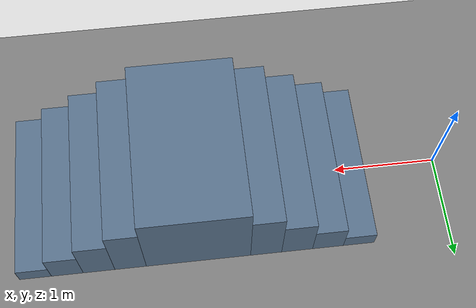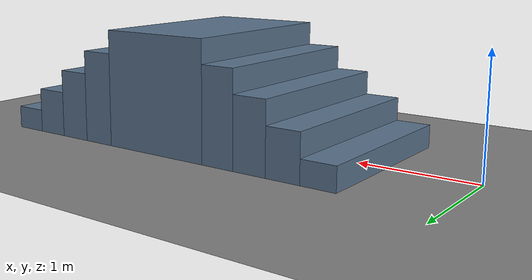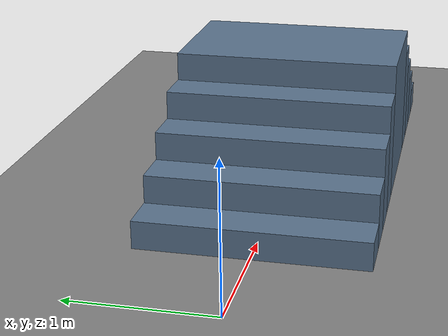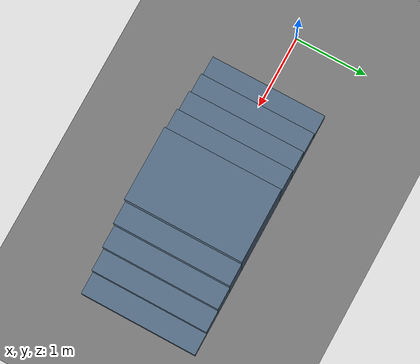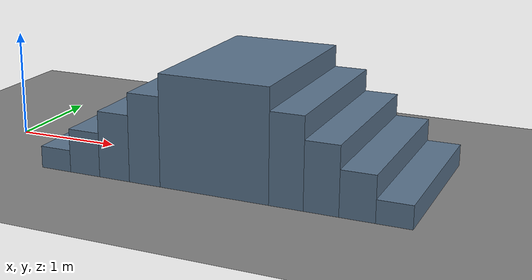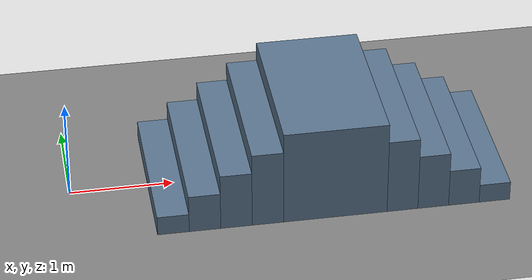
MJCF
<?xml version='1.0' encoding='utf-8'?>
<mujoco model="rs02_original_stairs_20cm">
  <compiler angle="radian" />
  <worldbody>
    <body name="terrain">
      <geom name="terrain" type="plane" pos="0 0 0" size="0 0 0.01" quat="1 0 0 0" friction="1 0.0050000000000000001 0.0001" rgba="0.5 0.5 0.5 1" contype="1" conaffinity="1" group="0" solref="0.02 1" solimp="0.90000000000000002 0.94999999999999996 0.001 0.5 2" />
      <geom name="course_0" type="box" pos="0.90000000000000002 0 0.10000000000000001" size="0.14999999999999999 0.80000000000000004 0.10000000000000001" quat="1 0 0 0" friction="1 0.0050000000000000001 0.0001" rgba="0.349999994 0.449999988 0.550000012 1" contype="1" conaffinity="1" group="0" solref="0.02 1" solimp="0.90000000000000002 0.94999999999999996 0.001 0.5 2" />
      <geom name="course_1" type="box" pos="1.2 0 0.20000000000000001" size="0.14999999999999999 0.80000000000000004 0.20000000000000001" quat="1 0 0 0" friction="1 0.0050000000000000001 0.0001" rgba="0.349999994 0.449999988 0.550000012 1" contype="1" conaffinity="1" group="0" solref="0.02 1" solimp="0.90000000000000002 0.94999999999999996 0.001 0.5 2" />
      <geom name="course_2" type="box" pos="1.5 0 0.30000000000000004" size="0.14999999999999999 0.80000000000000004 0.30000000000000004" quat="1 0 0 0" friction="1 0.0050000000000000001 0.0001" rgba="0.349999994 0.449999988 0.550000012 1" contype="1" conaffinity="1" group="0" solref="0.02 1" solimp="0.90000000000000002 0.94999999999999996 0.001 0.5 2" />
      <geom name="course_3" type="box" pos="1.7999999999999998 0 0.40000000000000002" size="0.14999999999999999 0.80000000000000004 0.40000000000000002" quat="1 0 0 0" friction="1 0.0050000000000000001 0.0001" rgba="0.349999994 0.449999988 0.550000012 1" contype="1" conaffinity="1" group="0" solref="0.02 1" solimp="0.90000000000000002 0.94999999999999996 0.001 0.5 2" />
      <geom name="course_4" type="box" pos="2.4500000000000002 0 0.5" size="0.5 0.80000000000000004 0.5" quat="1 0 0 0" friction="1 0.0050000000000000001 0.0001" rgba="0.349999994 0.449999988 0.550000012 1" contype="1" conaffinity="1" group="0" solref="0.02 1" solimp="0.90000000000000002 0.94999999999999996 0.001 0.5 2" />
      <geom name="course_5" type="box" pos="3.1000000000000001 0 0.40000000000000002" size="0.14999999999999999 0.80000000000000004 0.40000000000000002" quat="1 0 0 0" friction="1 0.0050000000000000001 0.0001" rgba="0.349999994 0.449999988 0.550000012 1" contype="1" conaffinity="1" group="0" solref="0.02 1" solimp="0.90000000000000002 0.94999999999999996 0.001 0.5 2" />
      <geom name="course_6" type="box" pos="3.3999999999999999 0 0.30000000000000004" size="0.14999999999999999 0.80000000000000004 0.30000000000000004" quat="1 0 0 0" friction="1 0.0050000000000000001 0.0001" rgba="0.349999994 0.449999988 0.550000012 1" contype="1" conaffinity="1" group="0" solref="0.02 1" solimp="0.90000000000000002 0.94999999999999996 0.001 0.5 2" />
      <geom name="course_7" type="box" pos="3.7000000000000002 0 0.20000000000000001" size="0.14999999999999999 0.80000000000000004 0.20000000000000001" quat="1 0 0 0" friction="1 0.0050000000000000001 0.0001" rgba="0.349999994 0.449999988 0.550000012 1" contype="1" conaffinity="1" group="0" solref="0.02 1" solimp="0.90000000000000002 0.94999999999999996 0.001 0.5 2" />
      <geom name="course_8" type="box" pos="4 0 0.10000000000000001" size="0.14999999999999999 0.80000000000000004 0.10000000000000001" quat="1 0 0 0" friction="1 0.0050000000000000001 0.0001" rgba="0.349999994 0.449999988 0.550000012 1" contype="1" conaffinity="1" group="0" solref="0.02 1" solimp="0.90000000000000002 0.94999999999999996 0.001 0.5 2" />
    </body>
  </worldbody>
</mujoco>
